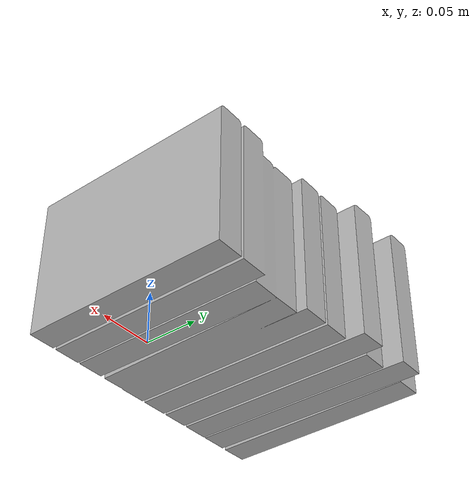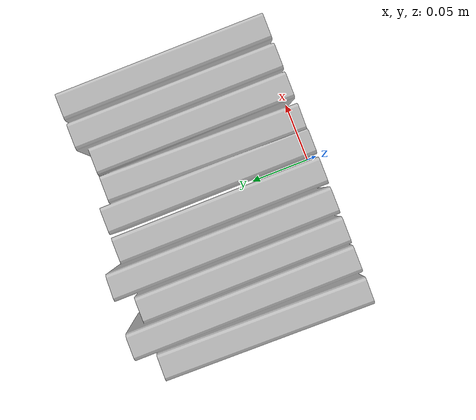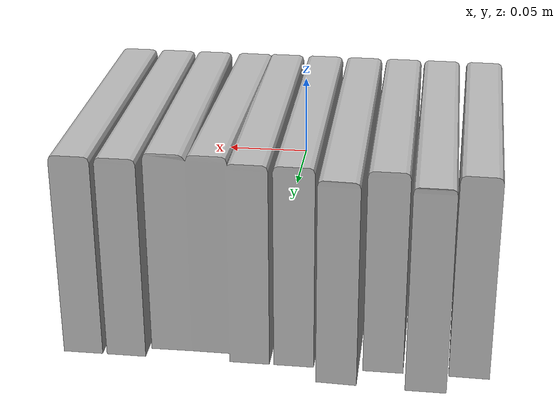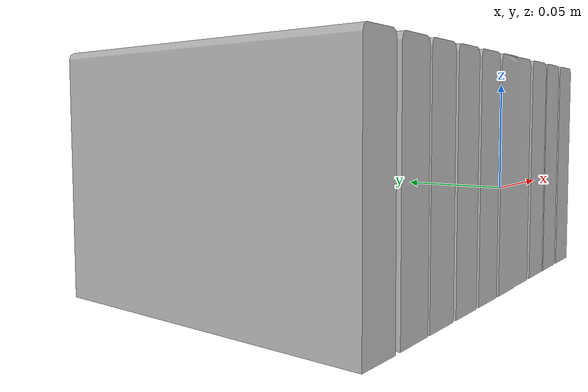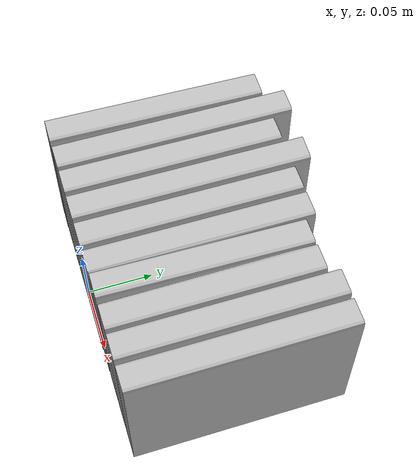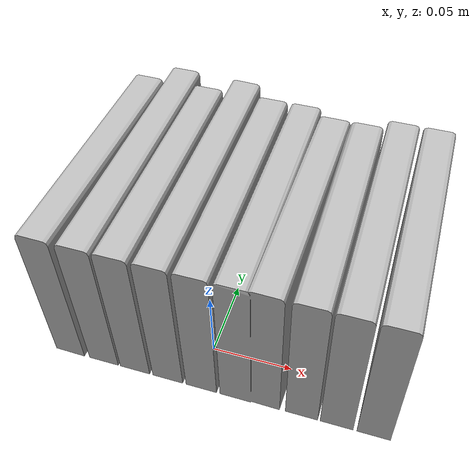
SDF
<?xml version="1.0" ?>
<sdf version="1.4">
  <model name="shelf2_book2_v4">
    <link name="body">
      <pose>0 0 0 0 0 0</pose>
      <inertial>
        <pose>  -0.002559   0.087296   0.004928 0 0 0</pose>
        <mass>0.5</mass>
        <inertia>
          <ixx>0.01</ixx>
          <ixy>0</ixy>
          <ixz>0</ixz>
          <iyy>0.01</iyy>
          <iyz>0</iyz>
          <izz>0.01</izz>
        </inertia>
      </inertial>
      <collision name="collision">
        <geometry>
          <mesh>
            <uri>model://bookshelf/shelf2_items/book2_v4/book2_v4.dae</uri>
          </mesh>
        </geometry>
      </collision>
      <visual name="visual">
        <geometry>
          <mesh>
            <uri>model://bookshelf/shelf2_items/book2_v4/book2_v4.dae</uri>
          </mesh>
        </geometry>
      </visual>
    </link>
  </model>
</sdf>
